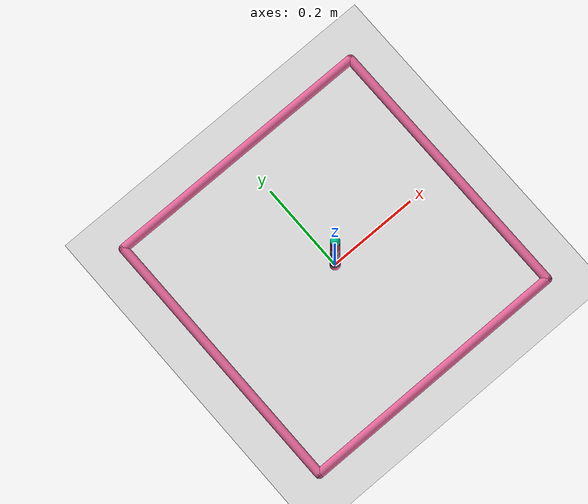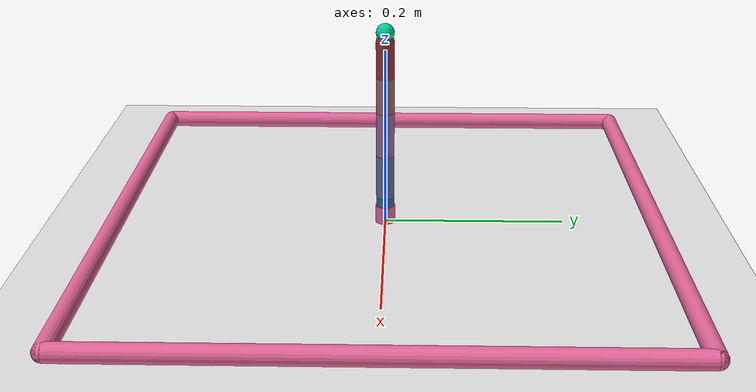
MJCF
<mujoco model="reacher">
	<compiler angle="radian" inertiafromgeom="true"/>
	<default>
		<joint armature="1" damping="1" limited="true"/>
		<geom contype="0" friction="1 0.1 0.1" rgba="0.7 0.7 0 1"/>
	</default>

	<option gravity="0 0 -9.81" integrator="RK4" timestep="0.01"/>
	<worldbody>
		<!-- Arena -->
		<geom conaffinity="0" contype="0" name="ground" pos="0 0 0" rgba="0.9 0.9 0.9 1" size="1 1 10" type="plane"/>
		<geom conaffinity="0" fromto="-.3 -.3 .01 .3 -.3 .01" name="sideS" rgba="0.9 0.4 0.6 1" size=".01" type="capsule"/>
		<geom conaffinity="0" fromto=" .3 -.3 .01 .3  .3 .01" name="sideE" rgba="0.9 0.4 0.6 1" size=".01" type="capsule"/>
		<geom conaffinity="0" fromto="-.3  .3 .01 .3  .3 .01" name="sideN" rgba="0.9 0.4 0.6 1" size=".01" type="capsule"/>
		<geom conaffinity="0" fromto="-.3 -.3 .01 -.3 .3 .01" name="sideW" rgba="0.9 0.4 0.6 1" size=".01" type="capsule"/>

		<!-- Arm -->
		<geom conaffinity="0" contype="0" fromto="0 0 0 0 0 0.02" name="root" rgba="0.9 0.4 0.6 1" size=".011" type="cylinder"/>

		<!-- pos is body start position -->
		<body name="body0" pos="0 0 .01">
			<joint axis="0 0 1" limited="false" name="joint0" pos="0 0 0" range="-3.0 3.0" type="hinge"/>
			<!-- fromto is body start position to end position => geom size -->
			<geom fromto="0 0 0 0 0 0.02" name="link0" rgba="0.2 0.4 0.6 1" size=".01" type="capsule"/>

			<body name="body1" pos="0 0 .02">
				<joint axis="0 1 0" limited="true" name="joint1" pos="0 0 0" range="-1.5 1.5" type="hinge"/>
				<geom fromto="0 0 0 0 0 0.05" name="link1" rgba="0.4 0.4 0.6 1" size=".01" type="capsule"/>

				<body name="body2" pos="0 0 0.05">
				<joint axis="0 0 1" limited="true" name="joint2" pos="0 0 0" range="-3.0 3.0" type="hinge"/>
				<geom fromto="0 0 0 0 0 0.05" name="link2" rgba="0.6 0.4 0.6 1" size=".01" type="capsule"/>

					<body name="body3" pos="0 0 0.05">
					<joint axis="0 1 0" limited="true" name="joint3" pos="0 0 0" range="-2.4 2.4" type="hinge"/>
					<geom fromto="0 0 0 0 0 0.04" name="link3" rgba="0.6 0.4 0.4 1" size=".01" type="capsule"/>

						<body name="body4" pos="0 0 0.04">
						<joint axis="0 0 1" limited="true" name="joint4" pos="0 0 0" range="-3.0 3.0" type="hinge"/>

							<body name="body5" pos="0 0 0.0">
							<joint axis="0 1 0" limited="true" name="joint5" pos="0 0 0" range="-1.57 1.57" type="hinge"/>
							<geom fromto="0 0 0 0 0 0.04" name="link5" rgba="0.6 0.2 0.2 1" size=".01" type="capsule"/>

								<body name="body6" pos="0 0 0.04">
								<joint axis="0 0 1" limited="true" name="joint6" pos="0 0 0" range="-3.0 3.0" type="hinge"/>

									<!-- End-Effort -->
									<body name="fingertip" pos="0 0 0.01">
										<geom contype="0" name="fingertip" pos="0 0 0" rgba="0.0 0.8 0.6 1" size=".01" type="sphere"/>
									</body>
								</body>
							</body>
						</body>
					</body>
				</body>
			</body>
		</body>

		<!-- Target -->
		<body name="target" pos="0 0 .01">
			<joint armature="0" axis="1 0 0" damping="0" limited="true" name="target_x" pos="0 0 0" range="-.2 .2" stiffness="0" type="slide"/>
			<joint armature="0" axis="0 1 0" damping="0" limited="true" name="target_y" pos="0 0 0" range="-.2 .2" stiffness="0" type="slide"/>
			<joint armature="0" axis="0 0 1" damping="0" limited="true" name="target_z" pos="0 0 0" range="0.0 .1" stiffness="0" type="slide"/>
			<geom conaffinity="0" contype="0" name="target" pos="0 0 0" rgba="0.9 0.2 0.2 1" size=".009" type="sphere"/>
		</body>
	</worldbody>

	<actuator>
		<motor ctrllimited="true" ctrlrange="-1.0 1.0" gear="600.0" joint="joint0"/>
		<motor ctrllimited="true" ctrlrange="-1.0 1.0" gear="600.0" joint="joint1"/>
		<motor ctrllimited="true" ctrlrange="-1.0 1.0" gear="400.0" joint="joint2"/>
		<motor ctrllimited="true" ctrlrange="-1.0 1.0" gear="400.0" joint="joint3"/>
		<motor ctrllimited="true" ctrlrange="-1.0 1.0" gear="400.0" joint="joint4"/>
		<motor ctrllimited="true" ctrlrange="-1.0 1.0" gear="200.0" joint="joint5"/>
		<motor ctrllimited="true" ctrlrange="-1.0 1.0" gear="200.0" joint="joint6"/>
	</actuator>
</mujoco>
